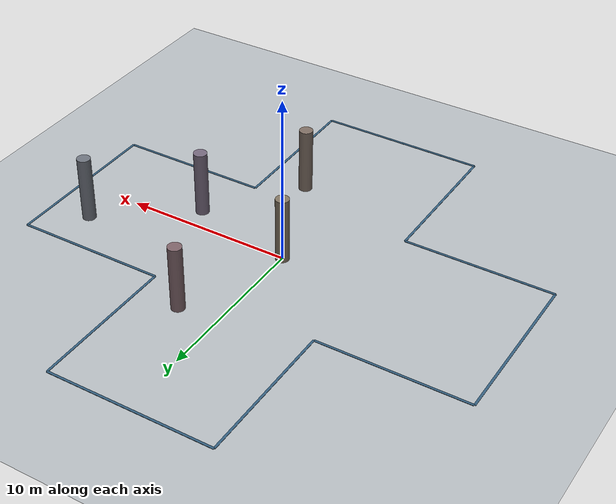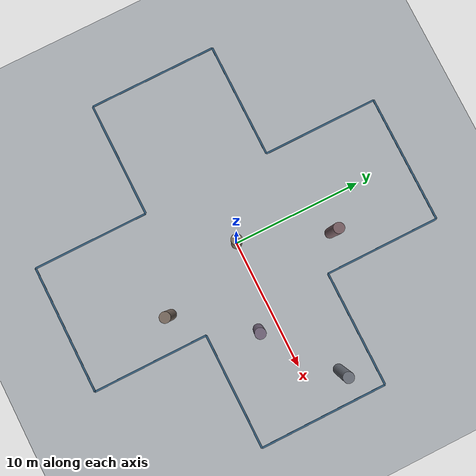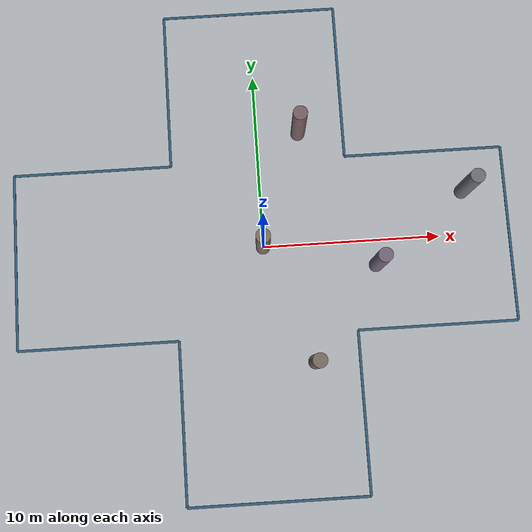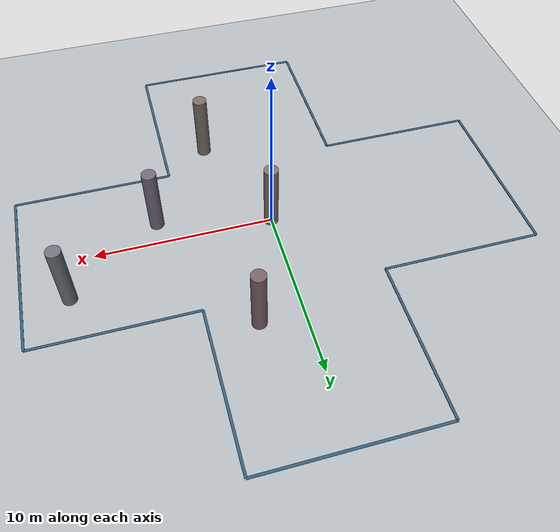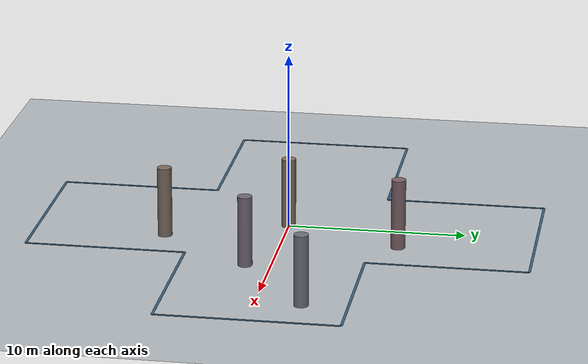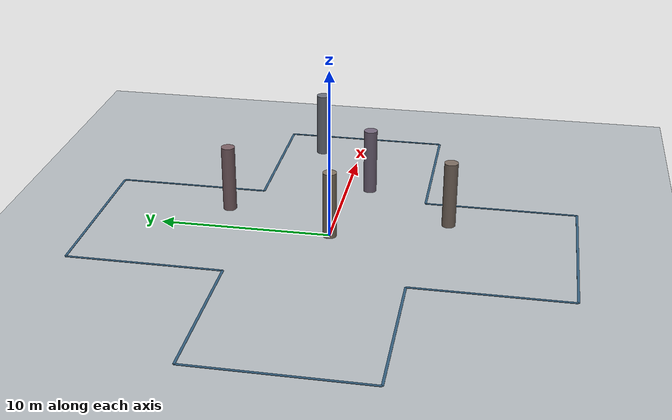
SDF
<sdf version="1.8">
 <world name="swarm_world">
  <model name="ground_plane">
   <static>true</static>
   <link name="link">
    <collision name="collision">
     <geometry><plane><normal>0 0 1</normal><size>100 100</size></plane></geometry>
    </collision>
    <visual name="visual">
     <geometry><plane><normal>0 0 1</normal><size>100 100</size></plane></geometry>
     <material>
      <ambient>0.70 0.72 0.74 1.0</ambient>
      <diffuse>0.70 0.72 0.74 1.0</diffuse>
      <specular>0.1 0.1 0.1 1.0</specular>
     </material>
    </visual>
   </link>
  </model>
  <model name="region_perimeter_border_plus">
   <static>true</static>
   <link name="border_link">
    <visual name="border_edge_0">
     <pose>0.0000 -14.0000 0.015 0 0 0.0000</pose>
     <geometry><box><size>10.0000 0.14 0.025</size></box></geometry>
     <material>
      <ambient>0.20 0.36 0.48 1.0</ambient>
      <diffuse>0.20 0.36 0.48 1.0</diffuse>
      <specular>0.25 0.25 0.25 1.0</specular>
     </material>
    </visual>
    <visual name="border_edge_1">
     <pose>5.0000 -9.5000 0.015 0 0 1.5708</pose>
     <geometry><box><size>9.0000 0.14 0.025</size></box></geometry>
     <material>
      <ambient>0.20 0.36 0.48 1.0</ambient>
      <diffuse>0.20 0.36 0.48 1.0</diffuse>
      <specular>0.25 0.25 0.25 1.0</specular>
     </material>
    </visual>
    <visual name="border_edge_2">
     <pose>9.5000 -5.0000 0.015 0 0 0.0000</pose>
     <geometry><box><size>9.0000 0.14 0.025</size></box></geometry>
     <material>
      <ambient>0.20 0.36 0.48 1.0</ambient>
      <diffuse>0.20 0.36 0.48 1.0</diffuse>
      <specular>0.25 0.25 0.25 1.0</specular>
     </material>
    </visual>
    <visual name="border_edge_3">
     <pose>14.0000 0.0000 0.015 0 0 1.5708</pose>
     <geometry><box><size>10.0000 0.14 0.025</size></box></geometry>
     <material>
      <ambient>0.20 0.36 0.48 1.0</ambient>
      <diffuse>0.20 0.36 0.48 1.0</diffuse>
      <specular>0.25 0.25 0.25 1.0</specular>
     </material>
    </visual>
    <visual name="border_edge_4">
     <pose>9.5000 5.0000 0.015 0 0 3.1416</pose>
     <geometry><box><size>9.0000 0.14 0.025</size></box></geometry>
     <material>
      <ambient>0.20 0.36 0.48 1.0</ambient>
      <diffuse>0.20 0.36 0.48 1.0</diffuse>
      <specular>0.25 0.25 0.25 1.0</specular>
     </material>
    </visual>
    <visual name="border_edge_5">
     <pose>5.0000 9.5000 0.015 0 0 1.5708</pose>
     <geometry><box><size>9.0000 0.14 0.025</size></box></geometry>
     <material>
      <ambient>0.20 0.36 0.48 1.0</ambient>
      <diffuse>0.20 0.36 0.48 1.0</diffuse>
      <specular>0.25 0.25 0.25 1.0</specular>
     </material>
    </visual>
    <visual name="border_edge_6">
     <pose>0.0000 14.0000 0.015 0 0 3.1416</pose>
     <geometry><box><size>10.0000 0.14 0.025</size></box></geometry>
     <material>
      <ambient>0.20 0.36 0.48 1.0</ambient>
      <diffuse>0.20 0.36 0.48 1.0</diffuse>
      <specular>0.25 0.25 0.25 1.0</specular>
     </material>
    </visual>
    <visual name="border_edge_7">
     <pose>-5.0000 9.5000 0.015 0 0 -1.5708</pose>
     <geometry><box><size>9.0000 0.14 0.025</size></box></geometry>
     <material>
      <ambient>0.20 0.36 0.48 1.0</ambient>
      <diffuse>0.20 0.36 0.48 1.0</diffuse>
      <specular>0.25 0.25 0.25 1.0</specular>
     </material>
    </visual>
    <visual name="border_edge_8">
     <pose>-9.5000 5.0000 0.015 0 0 3.1416</pose>
     <geometry><box><size>9.0000 0.14 0.025</size></box></geometry>
     <material>
      <ambient>0.20 0.36 0.48 1.0</ambient>
      <diffuse>0.20 0.36 0.48 1.0</diffuse>
      <specular>0.25 0.25 0.25 1.0</specular>
     </material>
    </visual>
    <visual name="border_edge_9">
     <pose>-14.0000 0.0000 0.015 0 0 -1.5708</pose>
     <geometry><box><size>10.0000 0.14 0.025</size></box></geometry>
     <material>
      <ambient>0.20 0.36 0.48 1.0</ambient>
      <diffuse>0.20 0.36 0.48 1.0</diffuse>
      <specular>0.25 0.25 0.25 1.0</specular>
     </material>
    </visual>
    <visual name="border_edge_10">
     <pose>-9.5000 -5.0000 0.015 0 0 0.0000</pose>
     <geometry><box><size>9.0000 0.14 0.025</size></box></geometry>
     <material>
      <ambient>0.20 0.36 0.48 1.0</ambient>
      <diffuse>0.20 0.36 0.48 1.0</diffuse>
      <specular>0.25 0.25 0.25 1.0</specular>
     </material>
    </visual>
    <visual name="border_edge_11">
     <pose>-5.0000 -9.5000 0.015 0 0 -1.5708</pose>
     <geometry><box><size>9.0000 0.14 0.025</size></box></geometry>
     <material>
      <ambient>0.20 0.36 0.48 1.0</ambient>
      <diffuse>0.20 0.36 0.48 1.0</diffuse>
      <specular>0.25 0.25 0.25 1.0</specular>
     </material>
    </visual>
   </link>
  </model>
  <model name="static_obs_302">
   <static>true</static>
   <pose>2.5000 -6.6000 2.0000 0 0 0</pose>
   <link name="link">
    <collision name="collision">
     <geometry><cylinder><radius>0.4000</radius><length>4.0000</length></cylinder></geometry>
    </collision>
    <visual name="visual">
     <geometry><cylinder><radius>0.4000</radius><length>4.0000</length></cylinder></geometry>
     <material>
      <ambient>0.48 0.42 0.38 1.0</ambient>
      <diffuse>0.48 0.42 0.38 1.0</diffuse>
      <specular>0.3 0.3 0.3 1.0</specular>
     </material>
    </visual>
   </link>
  </model>
  <model name="static_obs_304">
   <static>true</static>
   <pose>6.3000 -1.4000 2.0000 0 0 0</pose>
   <link name="link">
    <collision name="collision">
     <geometry><cylinder><radius>0.4000</radius><length>4.0000</length></cylinder></geometry>
    </collision>
    <visual name="visual">
     <geometry><cylinder><radius>0.4000</radius><length>4.0000</length></cylinder></geometry>
     <material>
      <ambient>0.45 0.40 0.48 1.0</ambient>
      <diffuse>0.45 0.40 0.48 1.0</diffuse>
      <specular>0.3 0.3 0.3 1.0</specular>
     </material>
    </visual>
   </link>
  </model>
  <model name="static_obs_305">
   <static>true</static>
   <pose>0.0000 -0.0000 2.0000 0 0 0</pose>
   <link name="link">
    <collision name="collision">
     <geometry><cylinder><radius>0.4000</radius><length>4.0000</length></cylinder></geometry>
    </collision>
    <visual name="visual">
     <geometry><cylinder><radius>0.4000</radius><length>4.0000</length></cylinder></geometry>
     <material>
      <ambient>0.50 0.45 0.38 1.0</ambient>
      <diffuse>0.50 0.45 0.38 1.0</diffuse>
      <specular>0.3 0.3 0.3 1.0</specular>
     </material>
    </visual>
   </link>
  </model>
  <model name="static_obs_307">
   <static>true</static>
   <pose>11.5000 2.5000 2.0000 0 0 0</pose>
   <link name="link">
    <collision name="collision">
     <geometry><cylinder><radius>0.4000</radius><length>4.0000</length></cylinder></geometry>
    </collision>
    <visual name="visual">
     <geometry><cylinder><radius>0.4000</radius><length>4.0000</length></cylinder></geometry>
     <material>
      <ambient>0.42 0.44 0.48 1.0</ambient>
      <diffuse>0.42 0.44 0.48 1.0</diffuse>
      <specular>0.3 0.3 0.3 1.0</specular>
     </material>
    </visual>
   </link>
  </model>
  <model name="static_obs_308">
   <static>true</static>
   <pose>2.4000 6.5000 2.0000 0 0 0</pose>
   <link name="link">
    <collision name="collision">
     <geometry><cylinder><radius>0.4000</radius><length>4.0000</length></cylinder></geometry>
    </collision>
    <visual name="visual">
     <geometry><cylinder><radius>0.4000</radius><length>4.0000</length></cylinder></geometry>
     <material>
      <ambient>0.48 0.38 0.40 1.0</ambient>
      <diffuse>0.48 0.38 0.40 1.0</diffuse>
      <specular>0.3 0.3 0.3 1.0</specular>
     </material>
    </visual>
   </link>
  </model>
 </world>
</sdf>
